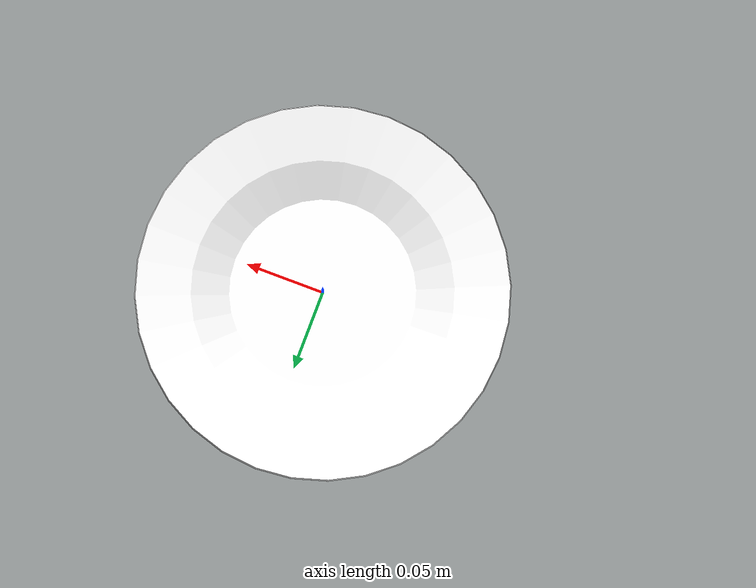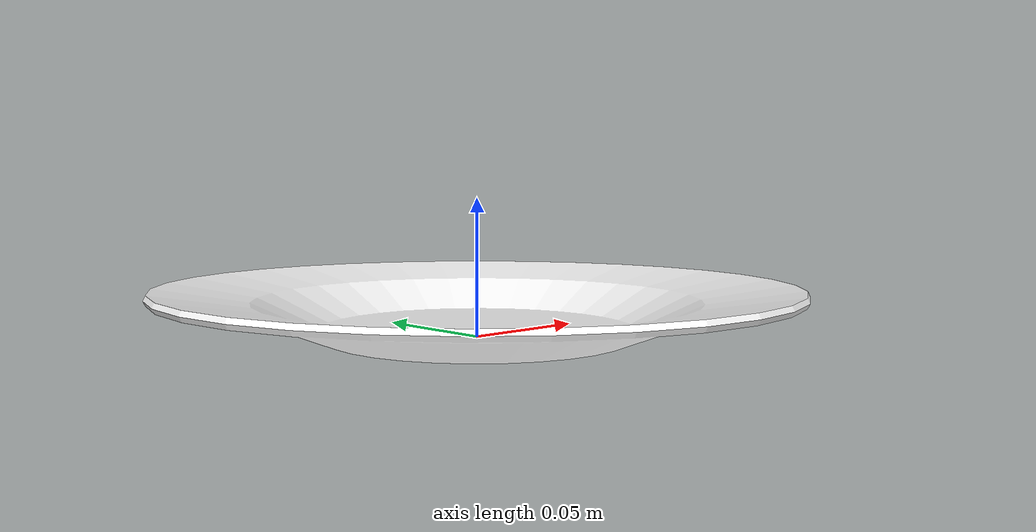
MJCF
<?xml version="1.0" encoding="utf-8"?>
<mujoco model="plate">
  <compiler angle="radian" meshdir="assets" texturedir="assets" autolimits="true"/>
  <asset>
    <material name="plate" specular="0.5" shininess="0.25"/>
    <mesh file="plate_01.obj"/>
    <mesh file="plate_01_collision_001.obj"/>
    <mesh file="plate_01_collision_002.obj"/>
    <mesh file="plate_01_collision_003.obj"/>
    <mesh file="plate_01_collision_004.obj"/>
    <mesh file="plate_01_collision_005.obj"/>
    <mesh file="plate_01_collision_006.obj"/>
    <mesh file="plate_01_collision_007.obj"/>
    <mesh file="plate_01_collision_008.obj"/>
    <mesh file="plate_01_collision_009.obj"/>
    <mesh file="plate_01_collision_010.obj"/>
    <mesh file="plate_01_collision_011.obj"/>
    <mesh file="plate_01_collision_012.obj"/>
  </asset>
  <default>
    <default class="plate">
      <default class="visual">
        <geom type="mesh" mass="0.4" contype="0" conaffinity="0" group="2" euler="1.5708 0 0" material="plate"/>
      </default>
      <default class="collision">
        <geom type="mesh" mass="0" group="3" euler="1.5708 0 0" solimp="0.95 0.99 0.001" solref="0.004 1"/>
      </default>
    </default>
  </default>
  <worldbody>
    <body name="plate" childclass="plate">
      <geom name="mesh" mesh="plate_01" class="visual"/>
      <geom name="collider_001" mesh="plate_01_collision_001" class="collision"/>
      <geom name="collider_002" mesh="plate_01_collision_002" class="collision"/>
      <geom name="collider_003" mesh="plate_01_collision_003" class="collision"/>
      <geom name="collider_004" mesh="plate_01_collision_004" class="collision"/>
      <geom name="collider_005" mesh="plate_01_collision_005" class="collision"/>
      <geom name="collider_006" mesh="plate_01_collision_006" class="collision"/>
      <geom name="collider_007" mesh="plate_01_collision_007" class="collision"/>
      <geom name="collider_008" mesh="plate_01_collision_008" class="collision"/>
      <geom name="collider_009" mesh="plate_01_collision_009" class="collision"/>
      <geom name="collider_010" mesh="plate_01_collision_010" class="collision"/>
      <geom name="collider_011" mesh="plate_01_collision_011" class="collision"/>
      <geom name="collider_012" mesh="plate_01_collision_012" class="collision"/>
    </body>
  </worldbody>
</mujoco>
